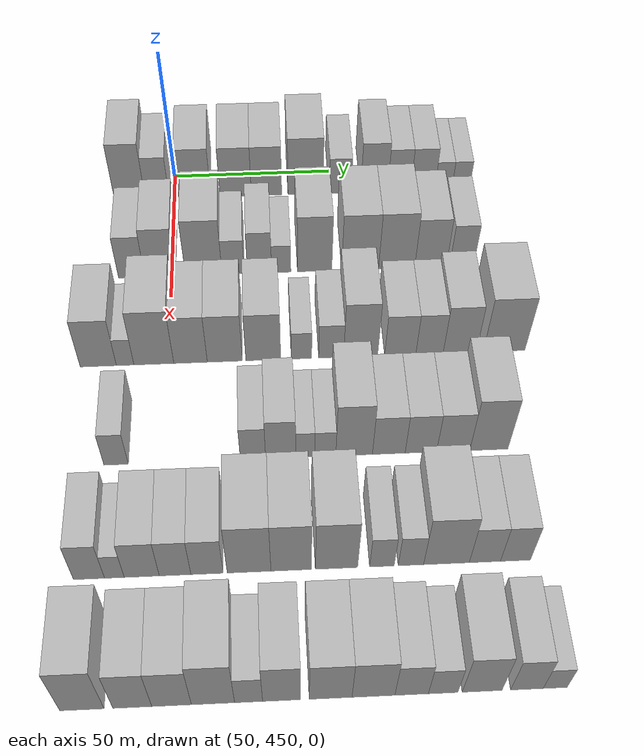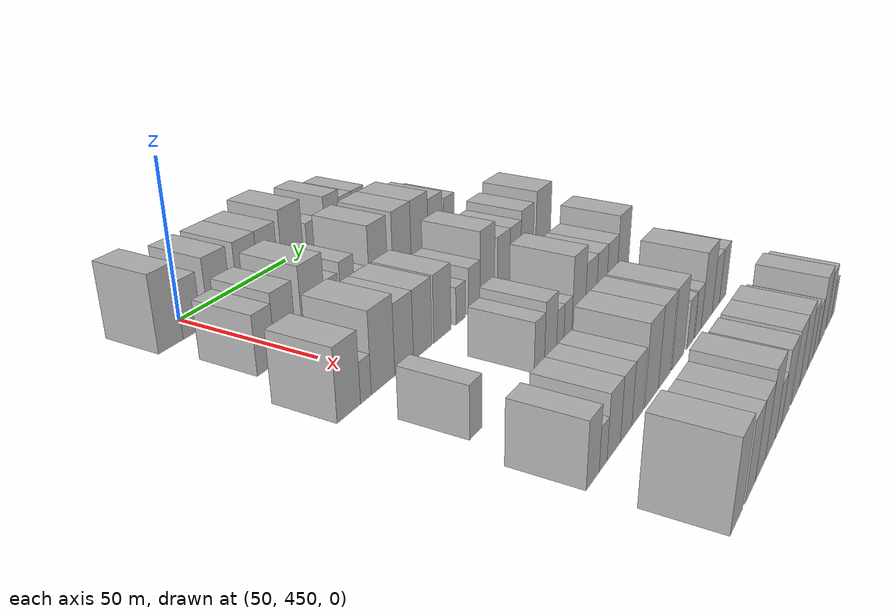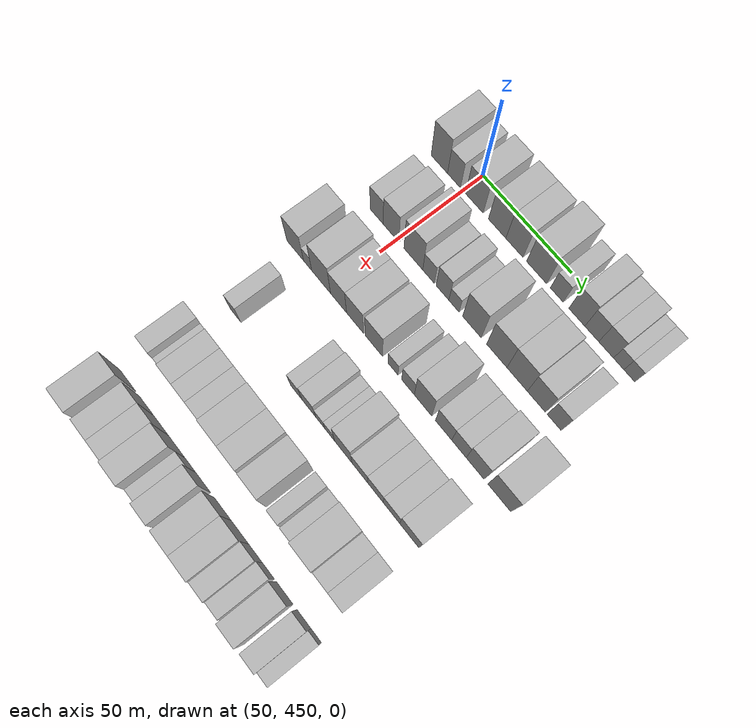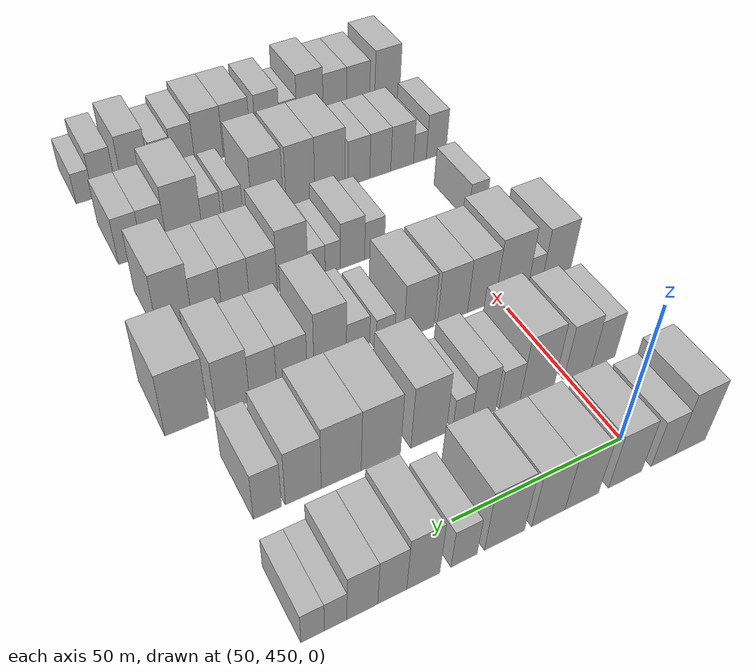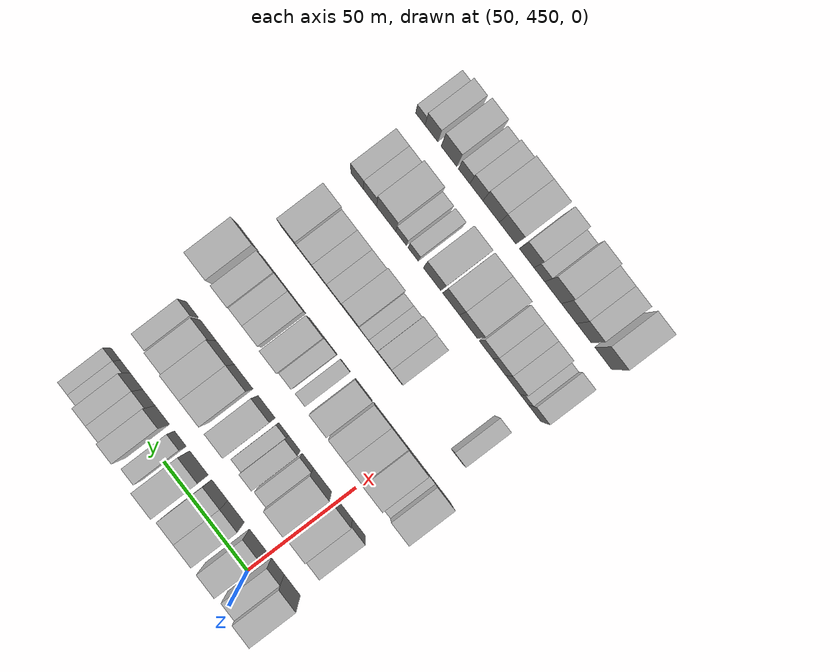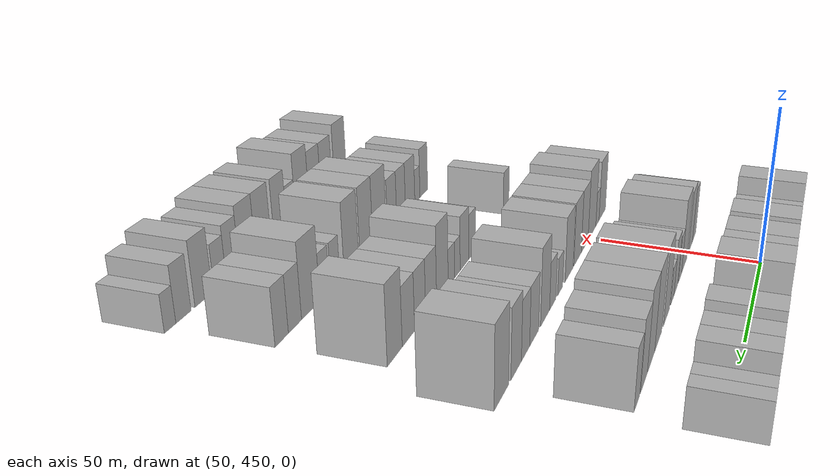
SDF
<sdf version="1.6">
 <world name="default">
  <model name="building_105">
   <static>1</static>
   <pose>50.0000 436.0087 0 0.000000 0.000000 0.000000</pose>
   <link name="link">
    <pose>0 0 12.00 0 0 0</pose>
    <collision name="collision"><geometry><box><size>20.0000 9.7291 24.0000</size></box></geometry></collision>
    <visual name="visual">
     <cast_shadows>0</cast_shadows>
     <geometry><box><size>20.0000 9.7291 24.0000</size></box></geometry>
     <material>
      <script>
       <uri>model://HANNAS_wall/materials/scripts</uri>
       <uri>model://HANNAS_wall/materials/textures</uri>
       <name>vrc/HANNAS_wall</name>
      </script>
     </material>
    </visual>
   </link>
  </model>
  <model name="building_106">
   <static>1</static>
   <pose>50.0000 444.6808 0 0.000000 0.000000 0.000000</pose>
   <link name="link">
    <pose>0 0 9.00 0 0 0</pose>
    <collision name="collision"><geometry><box><size>20.0000 7.6152 18.0000</size></box></geometry></collision>
    <visual name="visual">
     <cast_shadows>0</cast_shadows>
     <geometry><box><size>20.0000 7.6152 18.0000</size></box></geometry>
     <material>
      <script>
       <uri>model://HANNAS_wall/materials/scripts</uri>
       <uri>model://HANNAS_wall/materials/textures</uri>
       <name>vrc/HANNAS_wall</name>
      </script>
     </material>
    </visual>
   </link>
  </model>
  <model name="building_107">
   <static>1</static>
   <pose>50.0000 456.5857 0 0.000000 0.000000 0.000000</pose>
   <link name="link">
    <pose>0 0 10.50 0 0 0</pose>
    <collision name="collision"><geometry><box><size>20.0000 10.1945 21.0000</size></box></geometry></collision>
    <visual name="visual">
     <cast_shadows>0</cast_shadows>
     <geometry><box><size>20.0000 10.1945 21.0000</size></box></geometry>
     <material>
      <script>
       <uri>model://HANNAS_wall/materials/scripts</uri>
       <uri>model://HANNAS_wall/materials/textures</uri>
       <name>vrc/HANNAS_wall</name>
      </script>
     </material>
    </visual>
   </link>
  </model>
  <model name="building_108">
   <static>1</static>
   <pose>50.0000 469.6621 0 0.000000 0.000000 0.000000</pose>
   <link name="link">
    <pose>0 0 10.50 0 0 0</pose>
    <collision name="collision"><geometry><box><size>20.0000 9.9584 21.0000</size></box></geometry></collision>
    <visual name="visual">
     <cast_shadows>0</cast_shadows>
     <geometry><box><size>20.0000 9.9584 21.0000</size></box></geometry>
     <material>
      <script>
       <uri>model://HANNAS_wall/materials/scripts</uri>
       <uri>model://HANNAS_wall/materials/textures</uri>
       <name>vrc/HANNAS_wall</name>
      </script>
     </material>
    </visual>
   </link>
  </model>
  <model name="building_109">
   <static>1</static>
   <pose>50.0000 479.4709 0 0.000000 0.000000 0.000000</pose>
   <link name="link">
    <pose>0 0 10.50 0 0 0</pose>
    <collision name="collision"><geometry><box><size>20.0000 9.6592 21.0000</size></box></geometry></collision>
    <visual name="visual">
     <cast_shadows>0</cast_shadows>
     <geometry><box><size>20.0000 9.6592 21.0000</size></box></geometry>
     <material>
      <script>
       <uri>model://HANNAS_wall/materials/scripts</uri>
       <uri>model://HANNAS_wall/materials/textures</uri>
       <name>vrc/HANNAS_wall</name>
      </script>
     </material>
    </visual>
   </link>
  </model>
  <model name="building_110">
   <static>1</static>
   <pose>50.0000 491.8920 0 0.000000 0.000000 0.000000</pose>
   <link name="link">
    <pose>0 0 12.00 0 0 0</pose>
    <collision name="collision"><geometry><box><size>20.0000 11.1830 24.0000</size></box></geometry></collision>
    <visual name="visual">
     <cast_shadows>0</cast_shadows>
     <geometry><box><size>20.0000 11.1830 24.0000</size></box></geometry>
     <material>
      <script>
       <uri>model://HANNAS_wall/materials/scripts</uri>
       <uri>model://HANNAS_wall/materials/textures</uri>
       <name>vrc/HANNAS_wall</name>
      </script>
     </material>
    </visual>
   </link>
  </model>
  <model name="building_111">
   <static>1</static>
   <pose>50.0000 503.0159 0 0.000000 0.000000 0.000000</pose>
   <link name="link">
    <pose>0 0 7.50 0 0 0</pose>
    <collision name="collision"><geometry><box><size>20.0000 7.0646 15.0000</size></box></geometry></collision>
    <visual name="visual">
     <cast_shadows>0</cast_shadows>
     <geometry><box><size>20.0000 7.0646 15.0000</size></box></geometry>
     <material>
      <script>
       <uri>model://HANNAS_wall/materials/scripts</uri>
       <uri>model://HANNAS_wall/materials/textures</uri>
       <name>vrc/HANNAS_wall</name>
      </script>
     </material>
    </visual>
   </link>
  </model>
  <model name="building_112">
   <static>1</static>
   <pose>50.0000 513.8716 0 0.000000 0.000000 0.000000</pose>
   <link name="link">
    <pose>0 0 10.50 0 0 0</pose>
    <collision name="collision"><geometry><box><size>20.0000 8.6467 21.0000</size></box></geometry></collision>
    <visual name="visual">
     <cast_shadows>0</cast_shadows>
     <geometry><box><size>20.0000 8.6467 21.0000</size></box></geometry>
     <material>
      <script>
       <uri>model://HANNAS_wall/materials/scripts</uri>
       <uri>model://HANNAS_wall/materials/textures</uri>
       <name>vrc/HANNAS_wall</name>
      </script>
     </material>
    </visual>
   </link>
  </model>
  <model name="building_113">
   <static>1</static>
   <pose>50.0000 521.8988 0 0.000000 0.000000 0.000000</pose>
   <link name="link">
    <pose>0 0 9.00 0 0 0</pose>
    <collision name="collision"><geometry><box><size>20.0000 7.4078 18.0000</size></box></geometry></collision>
    <visual name="visual">
     <cast_shadows>0</cast_shadows>
     <geometry><box><size>20.0000 7.4078 18.0000</size></box></geometry>
     <material>
      <script>
       <uri>model://HANNAS_wall/materials/scripts</uri>
       <uri>model://HANNAS_wall/materials/textures</uri>
       <name>vrc/HANNAS_wall</name>
      </script>
     </material>
    </visual>
   </link>
  </model>
  <model name="building_114">
   <static>1</static>
   <pose>50.0000 529.4783 0 0.000000 0.000000 0.000000</pose>
   <link name="link">
    <pose>0 0 9.00 0 0 0</pose>
    <collision name="collision"><geometry><box><size>20.0000 7.7511 18.0000</size></box></geometry></collision>
    <visual name="visual">
     <cast_shadows>0</cast_shadows>
     <geometry><box><size>20.0000 7.7511 18.0000</size></box></geometry>
     <material>
      <script>
       <uri>model://HANNAS_wall/materials/scripts</uri>
       <uri>model://HANNAS_wall/materials/textures</uri>
       <name>vrc/HANNAS_wall</name>
      </script>
     </material>
    </visual>
   </link>
  </model>
  <model name="building_115">
   <static>1</static>
   <pose>50.0000 536.1049 0 0.000000 0.000000 0.000000</pose>
   <link name="link">
    <pose>0 0 6.00 0 0 0</pose>
    <collision name="collision"><geometry><box><size>20.0000 5.5022 12.0000</size></box></geometry></collision>
    <visual name="visual">
     <cast_shadows>0</cast_shadows>
     <geometry><box><size>20.0000 5.5022 12.0000</size></box></geometry>
     <material>
      <script>
       <uri>model://HANNAS_wall/materials/scripts</uri>
       <uri>model://HANNAS_wall/materials/textures</uri>
       <name>vrc/HANNAS_wall</name>
      </script>
     </material>
    </visual>
   </link>
  </model>
  <model name="building_116">
   <static>1</static>
   <pose>50.0000 541.6937 0 0.000000 0.000000 0.000000</pose>
   <link name="link">
    <pose>0 0 6.00 0 0 0</pose>
    <collision name="collision"><geometry><box><size>20.0000 5.6753 12.0000</size></box></geometry></collision>
    <visual name="visual">
     <cast_shadows>0</cast_shadows>
     <geometry><box><size>20.0000 5.6753 12.0000</size></box></geometry>
     <material>
      <script>
       <uri>model://HANNAS_wall/materials/scripts</uri>
       <uri>model://HANNAS_wall/materials/textures</uri>
       <name>vrc/HANNAS_wall</name>
      </script>
     </material>
    </visual>
   </link>
  </model>
  <model name="building_226">
   <static>1</static>
   <pose>82.0000 438.0944 0 0.000000 0.000000 0.000000</pose>
   <link name="link">
    <pose>0 0 9.00 0 0 0</pose>
    <collision name="collision"><geometry><box><size>20.0000 7.8311 18.0000</size></box></geometry></collision>
    <visual name="visual">
     <cast_shadows>0</cast_shadows>
     <geometry><box><size>20.0000 7.8311 18.0000</size></box></geometry>
     <material>
      <script>
       <uri>model://HANNAS_wall/materials/scripts</uri>
       <uri>model://HANNAS_wall/materials/textures</uri>
       <name>vrc/HANNAS_wall</name>
      </script>
     </material>
    </visual>
   </link>
  </model>
  <model name="building_227">
   <static>1</static>
   <pose>82.0000 446.6319 0 0.000000 0.000000 0.000000</pose>
   <link name="link">
    <pose>0 0 10.50 0 0 0</pose>
    <collision name="collision"><geometry><box><size>20.0000 9.2438 21.0000</size></box></geometry></collision>
    <visual name="visual">
     <cast_shadows>0</cast_shadows>
     <geometry><box><size>20.0000 9.2438 21.0000</size></box></geometry>
     <material>
      <script>
       <uri>model://HANNAS_wall/materials/scripts</uri>
       <uri>model://HANNAS_wall/materials/textures</uri>
       <name>vrc/HANNAS_wall</name>
      </script>
     </material>
    </visual>
   </link>
  </model>
  <model name="building_228">
   <static>1</static>
   <pose>82.0000 459.7396 0 0.000000 0.000000 0.000000</pose>
   <link name="link">
    <pose>0 0 12.00 0 0 0</pose>
    <collision name="collision"><geometry><box><size>20.0000 10.9716 24.0000</size></box></geometry></collision>
    <visual name="visual">
     <cast_shadows>0</cast_shadows>
     <geometry><box><size>20.0000 10.9716 24.0000</size></box></geometry>
     <material>
      <script>
       <uri>model://HANNAS_wall/materials/scripts</uri>
       <uri>model://HANNAS_wall/materials/textures</uri>
       <name>vrc/HANNAS_wall</name>
      </script>
     </material>
    </visual>
   </link>
  </model>
  <model name="building_229">
   <static>1</static>
   <pose>82.0000 468.5667 0 0.000000 0.000000 0.000000</pose>
   <link name="link">
    <pose>0 0 7.50 0 0 0</pose>
    <collision name="collision"><geometry><box><size>20.0000 6.6825 15.0000</size></box></geometry></collision>
    <visual name="visual">
     <cast_shadows>0</cast_shadows>
     <geometry><box><size>20.0000 6.6825 15.0000</size></box></geometry>
     <material>
      <script>
       <uri>model://HANNAS_wall/materials/scripts</uri>
       <uri>model://HANNAS_wall/materials/textures</uri>
       <name>vrc/HANNAS_wall</name>
      </script>
     </material>
    </visual>
   </link>
  </model>
  <model name="building_230">
   <static>1</static>
   <pose>82.0000 476.5369 0 0.000000 0.000000 0.000000</pose>
   <link name="link">
    <pose>0 0 9.00 0 0 0</pose>
    <collision name="collision"><geometry><box><size>20.0000 7.2579 18.0000</size></box></geometry></collision>
    <visual name="visual">
     <cast_shadows>0</cast_shadows>
     <geometry><box><size>20.0000 7.2579 18.0000</size></box></geometry>
     <material>
      <script>
       <uri>model://HANNAS_wall/materials/scripts</uri>
       <uri>model://HANNAS_wall/materials/textures</uri>
       <name>vrc/HANNAS_wall</name>
      </script>
     </material>
    </visual>
   </link>
  </model>
  <model name="building_231">
   <static>1</static>
   <pose>82.0000 483.0616 0 0.000000 0.000000 0.000000</pose>
   <link name="link">
    <pose>0 0 6.00 0 0 0</pose>
    <collision name="collision"><geometry><box><size>20.0000 5.7916 12.0000</size></box></geometry></collision>
    <visual name="visual">
     <cast_shadows>0</cast_shadows>
     <geometry><box><size>20.0000 5.7916 12.0000</size></box></geometry>
     <material>
      <script>
       <uri>model://HANNAS_wall/materials/scripts</uri>
       <uri>model://HANNAS_wall/materials/textures</uri>
       <name>vrc/HANNAS_wall</name>
      </script>
     </material>
    </visual>
   </link>
  </model>
  <model name="building_232">
   <static>1</static>
   <pose>82.0000 493.1412 0 0.000000 0.000000 0.000000</pose>
   <link name="link">
    <pose>0 0 12.00 0 0 0</pose>
    <collision name="collision"><geometry><box><size>20.0000 10.3676 24.0000</size></box></geometry></collision>
    <visual name="visual">
     <cast_shadows>0</cast_shadows>
     <geometry><box><size>20.0000 10.3676 24.0000</size></box></geometry>
     <material>
      <script>
       <uri>model://HANNAS_wall/materials/scripts</uri>
       <uri>model://HANNAS_wall/materials/textures</uri>
       <name>vrc/HANNAS_wall</name>
      </script>
     </material>
    </visual>
   </link>
  </model>
  <model name="building_233">
   <static>1</static>
   <pose>82.0000 506.9032 0 0.000000 0.000000 0.000000</pose>
   <link name="link">
    <pose>0 0 12.00 0 0 0</pose>
    <collision name="collision"><geometry><box><size>20.0000 11.1565 24.0000</size></box></geometry></collision>
    <visual name="visual">
     <cast_shadows>0</cast_shadows>
     <geometry><box><size>20.0000 11.1565 24.0000</size></box></geometry>
     <material>
      <script>
       <uri>model://HANNAS_wall/materials/scripts</uri>
       <uri>model://HANNAS_wall/materials/textures</uri>
       <name>vrc/HANNAS_wall</name>
      </script>
     </material>
    </visual>
   </link>
  </model>
  <model name="building_234">
   <static>1</static>
   <pose>82.0000 517.9600 0 0.000000 0.000000 0.000000</pose>
   <link name="link">
    <pose>0 0 12.00 0 0 0</pose>
    <collision name="collision"><geometry><box><size>20.0000 10.9570 24.0000</size></box></geometry></collision>
    <visual name="visual">
     <cast_shadows>0</cast_shadows>
     <geometry><box><size>20.0000 10.9570 24.0000</size></box></geometry>
     <material>
      <script>
       <uri>model://HANNAS_wall/materials/scripts</uri>
       <uri>model://HANNAS_wall/materials/textures</uri>
       <name>vrc/HANNAS_wall</name>
      </script>
     </material>
    </visual>
   </link>
  </model>
  <model name="building_235">
   <static>1</static>
   <pose>82.0000 528.2477 0 0.000000 0.000000 0.000000</pose>
   <link name="link">
    <pose>0 0 10.50 0 0 0</pose>
    <collision name="collision"><geometry><box><size>20.0000 9.6184 21.0000</size></box></geometry></collision>
    <visual name="visual">
     <cast_shadows>0</cast_shadows>
     <geometry><box><size>20.0000 9.6184 21.0000</size></box></geometry>
     <material>
      <script>
       <uri>model://HANNAS_wall/materials/scripts</uri>
       <uri>model://HANNAS_wall/materials/textures</uri>
       <name>vrc/HANNAS_wall</name>
      </script>
     </material>
    </visual>
   </link>
  </model>
  <model name="building_236">
   <static>1</static>
   <pose>82.0000 537.7304 0 0.000000 0.000000 0.000000</pose>
   <link name="link">
    <pose>0 0 9.00 0 0 0</pose>
    <collision name="collision"><geometry><box><size>20.0000 7.3471 18.0000</size></box></geometry></collision>
    <visual name="visual">
     <cast_shadows>0</cast_shadows>
     <geometry><box><size>20.0000 7.3471 18.0000</size></box></geometry>
     <material>
      <script>
       <uri>model://HANNAS_wall/materials/scripts</uri>
       <uri>model://HANNAS_wall/materials/textures</uri>
       <name>vrc/HANNAS_wall</name>
      </script>
     </material>
    </visual>
   </link>
  </model>
  <model name="building_345">
   <static>1</static>
   <pose>114.0000 430.2376 0 0.000000 0.000000 0.000000</pose>
   <link name="link">
    <pose>0 0 10.50 0 0 0</pose>
    <collision name="collision"><geometry><box><size>20.0000 10.1846 21.0000</size></box></geometry></collision>
    <visual name="visual">
     <cast_shadows>0</cast_shadows>
     <geometry><box><size>20.0000 10.1846 21.0000</size></box></geometry>
     <material>
      <script>
       <uri>model://HANNAS_wall/materials/scripts</uri>
       <uri>model://HANNAS_wall/materials/textures</uri>
       <name>vrc/HANNAS_wall</name>
      </script>
     </material>
    </visual>
   </link>
  </model>
  <model name="building_346">
   <static>1</static>
   <pose>114.0000 437.7969 0 0.000000 0.000000 0.000000</pose>
   <link name="link">
    <pose>0 0 6.00 0 0 0</pose>
    <collision name="collision"><geometry><box><size>20.0000 4.9341 12.0000</size></box></geometry></collision>
    <visual name="visual">
     <cast_shadows>0</cast_shadows>
     <geometry><box><size>20.0000 4.9341 12.0000</size></box></geometry>
     <material>
      <script>
       <uri>model://HANNAS_wall/materials/scripts</uri>
       <uri>model://HANNAS_wall/materials/textures</uri>
       <name>vrc/HANNAS_wall</name>
      </script>
     </material>
    </visual>
   </link>
  </model>
  <model name="building_347">
   <static>1</static>
   <pose>114.0000 445.8922 0 0.000000 0.000000 0.000000</pose>
   <link name="link">
    <pose>0 0 12.00 0 0 0</pose>
    <collision name="collision"><geometry><box><size>20.0000 11.2565 24.0000</size></box></geometry></collision>
    <visual name="visual">
     <cast_shadows>0</cast_shadows>
     <geometry><box><size>20.0000 11.2565 24.0000</size></box></geometry>
     <material>
      <script>
       <uri>model://HANNAS_wall/materials/scripts</uri>
       <uri>model://HANNAS_wall/materials/textures</uri>
       <name>vrc/HANNAS_wall</name>
      </script>
     </material>
    </visual>
   </link>
  </model>
  <model name="building_348">
   <static>1</static>
   <pose>114.0000 456.2611 0 0.000000 0.000000 0.000000</pose>
   <link name="link">
    <pose>0 0 10.50 0 0 0</pose>
    <collision name="collision"><geometry><box><size>20.0000 9.4812 21.0000</size></box></geometry></collision>
    <visual name="visual">
     <cast_shadows>0</cast_shadows>
     <geometry><box><size>20.0000 9.4812 21.0000</size></box></geometry>
     <material>
      <script>
       <uri>model://HANNAS_wall/materials/scripts</uri>
       <uri>model://HANNAS_wall/materials/textures</uri>
       <name>vrc/HANNAS_wall</name>
      </script>
     </material>
    </visual>
   </link>
  </model>
  <model name="building_349">
   <static>1</static>
   <pose>114.0000 465.9719 0 0.000000 0.000000 0.000000</pose>
   <link name="link">
    <pose>0 0 10.50 0 0 0</pose>
    <collision name="collision"><geometry><box><size>20.0000 9.9404 21.0000</size></box></geometry></collision>
    <visual name="visual">
     <cast_shadows>0</cast_shadows>
     <geometry><box><size>20.0000 9.9404 21.0000</size></box></geometry>
     <material>
      <script>
       <uri>model://HANNAS_wall/materials/scripts</uri>
       <uri>model://HANNAS_wall/materials/textures</uri>
       <name>vrc/HANNAS_wall</name>
      </script>
     </material>
    </visual>
   </link>
  </model>
  <model name="building_350">
   <static>1</static>
   <pose>114.0000 476.8843 0 0.000000 0.000000 0.000000</pose>
   <link name="link">
    <pose>0 0 10.50 0 0 0</pose>
    <collision name="collision"><geometry><box><size>20.0000 9.8845 21.0000</size></box></geometry></collision>
    <visual name="visual">
     <cast_shadows>0</cast_shadows>
     <geometry><box><size>20.0000 9.8845 21.0000</size></box></geometry>
     <material>
      <script>
       <uri>model://HANNAS_wall/materials/scripts</uri>
       <uri>model://HANNAS_wall/materials/textures</uri>
       <name>vrc/HANNAS_wall</name>
      </script>
     </material>
    </visual>
   </link>
  </model>
  <model name="building_351">
   <static>1</static>
   <pose>114.0000 487.7170 0 0.000000 0.000000 0.000000</pose>
   <link name="link">
    <pose>0 0 6.00 0 0 0</pose>
    <collision name="collision"><geometry><box><size>20.0000 5.7809 12.0000</size></box></geometry></collision>
    <visual name="visual">
     <cast_shadows>0</cast_shadows>
     <geometry><box><size>20.0000 5.7809 12.0000</size></box></geometry>
     <material>
      <script>
       <uri>model://HANNAS_wall/materials/scripts</uri>
       <uri>model://HANNAS_wall/materials/textures</uri>
       <name>vrc/HANNAS_wall</name>
      </script>
     </material>
    </visual>
   </link>
  </model>
  <model name="building_352">
   <static>1</static>
   <pose>114.0000 496.1612 0 0.000000 0.000000 0.000000</pose>
   <link name="link">
    <pose>0 0 7.50 0 0 0</pose>
    <collision name="collision"><geometry><box><size>20.0000 7.1074 15.0000</size></box></geometry></collision>
    <visual name="visual">
     <cast_shadows>0</cast_shadows>
     <geometry><box><size>20.0000 7.1074 15.0000</size></box></geometry>
     <material>
      <script>
       <uri>model://HANNAS_wall/materials/scripts</uri>
       <uri>model://HANNAS_wall/materials/textures</uri>
       <name>vrc/HANNAS_wall</name>
      </script>
     </material>
    </visual>
   </link>
  </model>
  <model name="building_353">
   <static>1</static>
   <pose>114.0000 504.5646 0 0.000000 0.000000 0.000000</pose>
   <link name="link">
    <pose>0 0 12.00 0 0 0</pose>
    <collision name="collision"><geometry><box><size>20.0000 9.6995 24.0000</size></box></geometry></collision>
    <visual name="visual">
     <cast_shadows>0</cast_shadows>
     <geometry><box><size>20.0000 9.6995 24.0000</size></box></geometry>
     <material>
      <script>
       <uri>model://HANNAS_wall/materials/scripts</uri>
       <uri>model://HANNAS_wall/materials/textures</uri>
       <name>vrc/HANNAS_wall</name>
      </script>
     </material>
    </visual>
   </link>
  </model>
  <model name="building_354">
   <static>1</static>
   <pose>114.0000 515.8665 0 0.000000 0.000000 0.000000</pose>
   <link name="link">
    <pose>0 0 9.00 0 0 0</pose>
    <collision name="collision"><geometry><box><size>20.0000 8.9042 18.0000</size></box></geometry></collision>
    <visual name="visual">
     <cast_shadows>0</cast_shadows>
     <geometry><box><size>20.0000 8.9042 18.0000</size></box></geometry>
     <material>
      <script>
       <uri>model://HANNAS_wall/materials/scripts</uri>
       <uri>model://HANNAS_wall/materials/textures</uri>
       <name>vrc/HANNAS_wall</name>
      </script>
     </material>
    </visual>
   </link>
  </model>
  <model name="building_355">
   <static>1</static>
   <pose>114.0000 524.2230 0 0.000000 0.000000 0.000000</pose>
   <link name="link">
    <pose>0 0 9.00 0 0 0</pose>
    <collision name="collision"><geometry><box><size>20.0000 7.8090 18.0000</size></box></geometry></collision>
    <visual name="visual">
     <cast_shadows>0</cast_shadows>
     <geometry><box><size>20.0000 7.8090 18.0000</size></box></geometry>
     <material>
      <script>
       <uri>model://HANNAS_wall/materials/scripts</uri>
       <uri>model://HANNAS_wall/materials/textures</uri>
       <name>vrc/HANNAS_wall</name>
      </script>
     </material>
    </visual>
   </link>
  </model>
  <model name="building_356">
   <static>1</static>
   <pose>114.0000 532.8742 0 0.000000 0.000000 0.000000</pose>
   <link name="link">
    <pose>0 0 10.50 0 0 0</pose>
    <collision name="collision"><geometry><box><size>20.0000 9.4934 21.0000</size></box></geometry></collision>
    <visual name="visual">
     <cast_shadows>0</cast_shadows>
     <geometry><box><size>20.0000 9.4934 21.0000</size></box></geometry>
     <material>
      <script>
       <uri>model://HANNAS_wall/materials/scripts</uri>
       <uri>model://HANNAS_wall/materials/textures</uri>
       <name>vrc/HANNAS_wall</name>
      </script>
     </material>
    </visual>
   </link>
  </model>
  <model name="building_357">
   <static>1</static>
   <pose>114.0000 545.6073 0 0.000000 0.000000 0.000000</pose>
   <link name="link">
    <pose>0 0 12.00 0 0 0</pose>
    <collision name="collision"><geometry><box><size>20.0000 11.9728 24.0000</size></box></geometry></collision>
    <visual name="visual">
     <cast_shadows>0</cast_shadows>
     <geometry><box><size>20.0000 11.9728 24.0000</size></box></geometry>
     <material>
      <script>
       <uri>model://HANNAS_wall/materials/scripts</uri>
       <uri>model://HANNAS_wall/materials/textures</uri>
       <name>vrc/HANNAS_wall</name>
      </script>
     </material>
    </visual>
   </link>
  </model>
  <model name="building_465">
   <static>1</static>
   <pose>146.0000 437.0614 0 0.000000 0.000000 0.000000</pose>
   <link name="link">
    <pose>0 0 7.50 0 0 0</pose>
    <collision name="collision"><geometry><box><size>20.0000 6.4445 15.0000</size></box></geometry></collision>
    <visual name="visual">
     <cast_shadows>0</cast_shadows>
     <geometry><box><size>20.0000 6.4445 15.0000</size></box></geometry>
     <material>
      <script>
       <uri>model://HANNAS_wall/materials/scripts</uri>
       <uri>model://HANNAS_wall/materials/textures</uri>
       <name>vrc/HANNAS_wall</name>
      </script>
     </material>
    </visual>
   </link>
  </model>
  <model name="building_466">
   <static>1</static>
   <pose>146.0000 473.3541 0 0.000000 0.000000 0.000000</pose>
   <link name="link">
    <pose>0 0 7.50 0 0 0</pose>
    <collision name="collision"><geometry><box><size>20.0000 6.7136 15.0000</size></box></geometry></collision>
    <visual name="visual">
     <cast_shadows>0</cast_shadows>
     <geometry><box><size>20.0000 6.7136 15.0000</size></box></geometry>
     <material>
      <script>
       <uri>model://HANNAS_wall/materials/scripts</uri>
       <uri>model://HANNAS_wall/materials/textures</uri>
       <name>vrc/HANNAS_wall</name>
      </script>
     </material>
    </visual>
   </link>
  </model>
  <model name="building_467">
   <static>1</static>
   <pose>146.0000 480.7275 0 0.000000 0.000000 0.000000</pose>
   <link name="link">
    <pose>0 0 9.00 0 0 0</pose>
    <collision name="collision"><geometry><box><size>20.0000 8.0332 18.0000</size></box></geometry></collision>
    <visual name="visual">
     <cast_shadows>0</cast_shadows>
     <geometry><box><size>20.0000 8.0332 18.0000</size></box></geometry>
     <material>
      <script>
       <uri>model://HANNAS_wall/materials/scripts</uri>
       <uri>model://HANNAS_wall/materials/textures</uri>
       <name>vrc/HANNAS_wall</name>
      </script>
     </material>
    </visual>
   </link>
  </model>
  <model name="building_468">
   <static>1</static>
   <pose>146.0000 487.2631 0 0.000000 0.000000 0.000000</pose>
   <link name="link">
    <pose>0 0 6.00 0 0 0</pose>
    <collision name="collision"><geometry><box><size>20.0000 5.0380 12.0000</size></box></geometry></collision>
    <visual name="visual">
     <cast_shadows>0</cast_shadows>
     <geometry><box><size>20.0000 5.0380 12.0000</size></box></geometry>
     <material>
      <script>
       <uri>model://HANNAS_wall/materials/scripts</uri>
       <uri>model://HANNAS_wall/materials/textures</uri>
       <name>vrc/HANNAS_wall</name>
      </script>
     </material>
    </visual>
   </link>
  </model>
  <model name="building_469">
   <static>1</static>
   <pose>146.0000 492.5959 0 0.000000 0.000000 0.000000</pose>
   <link name="link">
    <pose>0 0 6.00 0 0 0</pose>
    <collision name="collision"><geometry><box><size>20.0000 5.6276 12.0000</size></box></geometry></collision>
    <visual name="visual">
     <cast_shadows>0</cast_shadows>
     <geometry><box><size>20.0000 5.6276 12.0000</size></box></geometry>
     <material>
      <script>
       <uri>model://HANNAS_wall/materials/scripts</uri>
       <uri>model://HANNAS_wall/materials/textures</uri>
       <name>vrc/HANNAS_wall</name>
      </script>
     </material>
    </visual>
   </link>
  </model>
  <model name="building_470">
   <static>1</static>
   <pose>146.0000 500.3106 0 0.000000 0.000000 0.000000</pose>
   <link name="link">
    <pose>0 0 12.00 0 0 0</pose>
    <collision name="collision"><geometry><box><size>20.0000 9.8017 24.0000</size></box></geometry></collision>
    <visual name="visual">
     <cast_shadows>0</cast_shadows>
     <geometry><box><size>20.0000 9.8017 24.0000</size></box></geometry>
     <material>
      <script>
       <uri>model://HANNAS_wall/materials/scripts</uri>
       <uri>model://HANNAS_wall/materials/textures</uri>
       <name>vrc/HANNAS_wall</name>
      </script>
     </material>
    </visual>
   </link>
  </model>
  <model name="building_471">
   <static>1</static>
   <pose>146.0000 509.5921 0 0.000000 0.000000 0.000000</pose>
   <link name="link">
    <pose>0 0 9.00 0 0 0</pose>
    <collision name="collision"><geometry><box><size>20.0000 8.7613 18.0000</size></box></geometry></collision>
    <visual name="visual">
     <cast_shadows>0</cast_shadows>
     <geometry><box><size>20.0000 8.7613 18.0000</size></box></geometry>
     <material>
      <script>
       <uri>model://HANNAS_wall/materials/scripts</uri>
       <uri>model://HANNAS_wall/materials/textures</uri>
       <name>vrc/HANNAS_wall</name>
      </script>
     </material>
    </visual>
   </link>
  </model>
  <model name="building_472">
   <static>1</static>
   <pose>146.0000 518.1861 0 0.000000 0.000000 0.000000</pose>
   <link name="link">
    <pose>0 0 9.00 0 0 0</pose>
    <collision name="collision"><geometry><box><size>20.0000 8.4266 18.0000</size></box></geometry></collision>
    <visual name="visual">
     <cast_shadows>0</cast_shadows>
     <geometry><box><size>20.0000 8.4266 18.0000</size></box></geometry>
     <material>
      <script>
       <uri>model://HANNAS_wall/materials/scripts</uri>
       <uri>model://HANNAS_wall/materials/textures</uri>
       <name>vrc/HANNAS_wall</name>
      </script>
     </material>
    </visual>
   </link>
  </model>
  <model name="building_473">
   <static>1</static>
   <pose>146.0000 526.8687 0 0.000000 0.000000 0.000000</pose>
   <link name="link">
    <pose>0 0 9.00 0 0 0</pose>
    <collision name="collision"><geometry><box><size>20.0000 8.9387 18.0000</size></box></geometry></collision>
    <visual name="visual">
     <cast_shadows>0</cast_shadows>
     <geometry><box><size>20.0000 8.9387 18.0000</size></box></geometry>
     <material>
      <script>
       <uri>model://HANNAS_wall/materials/scripts</uri>
       <uri>model://HANNAS_wall/materials/textures</uri>
       <name>vrc/HANNAS_wall</name>
      </script>
     </material>
    </visual>
   </link>
  </model>
  <model name="building_474">
   <static>1</static>
   <pose>146.0000 536.4719 0 0.000000 0.000000 0.000000</pose>
   <link name="link">
    <pose>0 0 12.00 0 0 0</pose>
    <collision name="collision"><geometry><box><size>20.0000 10.2676 24.0000</size></box></geometry></collision>
    <visual name="visual">
     <cast_shadows>0</cast_shadows>
     <geometry><box><size>20.0000 10.2676 24.0000</size></box></geometry>
     <material>
      <script>
       <uri>model://HANNAS_wall/materials/scripts</uri>
       <uri>model://HANNAS_wall/materials/textures</uri>
       <name>vrc/HANNAS_wall</name>
      </script>
     </material>
    </visual>
   </link>
  </model>
  <model name="building_587">
   <static>1</static>
   <pose>178.0000 432.1834 0 0.000000 0.000000 0.000000</pose>
   <link name="link">
    <pose>0 0 9.00 0 0 0</pose>
    <collision name="collision"><geometry><box><size>20.0000 7.6796 18.0000</size></box></geometry></collision>
    <visual name="visual">
     <cast_shadows>0</cast_shadows>
     <geometry><box><size>20.0000 7.6796 18.0000</size></box></geometry>
     <material>
      <script>
       <uri>model://HANNAS_wall/materials/scripts</uri>
       <uri>model://HANNAS_wall/materials/textures</uri>
       <name>vrc/HANNAS_wall</name>
      </script>
     </material>
    </visual>
   </link>
  </model>
  <model name="building_588">
   <static>1</static>
   <pose>178.0000 438.4480 0 0.000000 0.000000 0.000000</pose>
   <link name="link">
    <pose>0 0 6.00 0 0 0</pose>
    <collision name="collision"><geometry><box><size>20.0000 4.8495 12.0000</size></box></geometry></collision>
    <visual name="visual">
     <cast_shadows>0</cast_shadows>
     <geometry><box><size>20.0000 4.8495 12.0000</size></box></geometry>
     <material>
      <script>
       <uri>model://HANNAS_wall/materials/scripts</uri>
       <uri>model://HANNAS_wall/materials/textures</uri>
       <name>vrc/HANNAS_wall</name>
      </script>
     </material>
    </visual>
   </link>
  </model>
  <model name="building_589">
   <static>1</static>
   <pose>178.0000 445.2001 0 0.000000 0.000000 0.000000</pose>
   <link name="link">
    <pose>0 0 9.00 0 0 0</pose>
    <collision name="collision"><geometry><box><size>20.0000 8.6548 18.0000</size></box></geometry></collision>
    <visual name="visual">
     <cast_shadows>0</cast_shadows>
     <geometry><box><size>20.0000 8.6548 18.0000</size></box></geometry>
     <material>
      <script>
       <uri>model://HANNAS_wall/materials/scripts</uri>
       <uri>model://HANNAS_wall/materials/textures</uri>
       <name>vrc/HANNAS_wall</name>
      </script>
     </material>
    </visual>
   </link>
  </model>
  <model name="building_590">
   <static>1</static>
   <pose>178.0000 453.4441 0 0.000000 0.000000 0.000000</pose>
   <link name="link">
    <pose>0 0 9.00 0 0 0</pose>
    <collision name="collision"><geometry><box><size>20.0000 7.8331 18.0000</size></box></geometry></collision>
    <visual name="visual">
     <cast_shadows>0</cast_shadows>
     <geometry><box><size>20.0000 7.8331 18.0000</size></box></geometry>
     <material>
      <script>
       <uri>model://HANNAS_wall/materials/scripts</uri>
       <uri>model://HANNAS_wall/materials/textures</uri>
       <name>vrc/HANNAS_wall</name>
      </script>
     </material>
    </visual>
   </link>
  </model>
  <model name="building_591">
   <static>1</static>
   <pose>178.0000 461.3627 0 0.000000 0.000000 0.000000</pose>
   <link name="link">
    <pose>0 0 9.00 0 0 0</pose>
    <collision name="collision"><geometry><box><size>20.0000 8.0041 18.0000</size></box></geometry></collision>
    <visual name="visual">
     <cast_shadows>0</cast_shadows>
     <geometry><box><size>20.0000 8.0041 18.0000</size></box></geometry>
     <material>
      <script>
       <uri>model://HANNAS_wall/materials/scripts</uri>
       <uri>model://HANNAS_wall/materials/textures</uri>
       <name>vrc/HANNAS_wall</name>
      </script>
     </material>
    </visual>
   </link>
  </model>
  <model name="building_592">
   <static>1</static>
   <pose>178.0000 471.7921 0 0.000000 0.000000 0.000000</pose>
   <link name="link">
    <pose>0 0 12.00 0 0 0</pose>
    <collision name="collision"><geometry><box><size>20.0000 10.8547 24.0000</size></box></geometry></collision>
    <visual name="visual">
     <cast_shadows>0</cast_shadows>
     <geometry><box><size>20.0000 10.8547 24.0000</size></box></geometry>
     <material>
      <script>
       <uri>model://HANNAS_wall/materials/scripts</uri>
       <uri>model://HANNAS_wall/materials/textures</uri>
       <name>vrc/HANNAS_wall</name>
      </script>
     </material>
    </visual>
   </link>
  </model>
  <model name="building_593">
   <static>1</static>
   <pose>178.0000 482.2448 0 0.000000 0.000000 0.000000</pose>
   <link name="link">
    <pose>0 0 12.00 0 0 0</pose>
    <collision name="collision"><geometry><box><size>20.0000 10.0507 24.0000</size></box></geometry></collision>
    <visual name="visual">
     <cast_shadows>0</cast_shadows>
     <geometry><box><size>20.0000 10.0507 24.0000</size></box></geometry>
     <material>
      <script>
       <uri>model://HANNAS_wall/materials/scripts</uri>
       <uri>model://HANNAS_wall/materials/textures</uri>
       <name>vrc/HANNAS_wall</name>
      </script>
     </material>
    </visual>
   </link>
  </model>
  <model name="building_594">
   <static>1</static>
   <pose>178.0000 493.5419 0 0.000000 0.000000 0.000000</pose>
   <link name="link">
    <pose>0 0 12.00 0 0 0</pose>
    <collision name="collision"><geometry><box><size>20.0000 10.5436 24.0000</size></box></geometry></collision>
    <visual name="visual">
     <cast_shadows>0</cast_shadows>
     <geometry><box><size>20.0000 10.5436 24.0000</size></box></geometry>
     <material>
      <script>
       <uri>model://HANNAS_wall/materials/scripts</uri>
       <uri>model://HANNAS_wall/materials/textures</uri>
       <name>vrc/HANNAS_wall</name>
      </script>
     </material>
    </visual>
   </link>
  </model>
  <model name="building_595">
   <static>1</static>
   <pose>178.0000 504.8810 0 0.000000 0.000000 0.000000</pose>
   <link name="link">
    <pose>0 0 7.50 0 0 0</pose>
    <collision name="collision"><geometry><box><size>20.0000 6.1345 15.0000</size></box></geometry></collision>
    <visual name="visual">
     <cast_shadows>0</cast_shadows>
     <geometry><box><size>20.0000 6.1345 15.0000</size></box></geometry>
     <material>
      <script>
       <uri>model://HANNAS_wall/materials/scripts</uri>
       <uri>model://HANNAS_wall/materials/textures</uri>
       <name>vrc/HANNAS_wall</name>
      </script>
     </material>
    </visual>
   </link>
  </model>
  <model name="building_596">
   <static>1</static>
   <pose>178.0000 512.1306 0 0.000000 0.000000 0.000000</pose>
   <link name="link">
    <pose>0 0 7.50 0 0 0</pose>
    <collision name="collision"><geometry><box><size>20.0000 6.3647 15.0000</size></box></geometry></collision>
    <visual name="visual">
     <cast_shadows>0</cast_shadows>
     <geometry><box><size>20.0000 6.3647 15.0000</size></box></geometry>
     <material>
      <script>
       <uri>model://HANNAS_wall/materials/scripts</uri>
       <uri>model://HANNAS_wall/materials/textures</uri>
       <name>vrc/HANNAS_wall</name>
      </script>
     </material>
    </visual>
   </link>
  </model>
  <model name="building_597">
   <static>1</static>
   <pose>178.0000 521.0428 0 0.000000 0.000000 0.000000</pose>
   <link name="link">
    <pose>0 0 12.00 0 0 0</pose>
    <collision name="collision"><geometry><box><size>20.0000 11.4597 24.0000</size></box></geometry></collision>
    <visual name="visual">
     <cast_shadows>0</cast_shadows>
     <geometry><box><size>20.0000 11.4597 24.0000</size></box></geometry>
     <material>
      <script>
       <uri>model://HANNAS_wall/materials/scripts</uri>
       <uri>model://HANNAS_wall/materials/textures</uri>
       <name>vrc/HANNAS_wall</name>
      </script>
     </material>
    </visual>
   </link>
  </model>
  <model name="building_598">
   <static>1</static>
   <pose>178.0000 530.6876 0 0.000000 0.000000 0.000000</pose>
   <link name="link">
    <pose>0 0 9.00 0 0 0</pose>
    <collision name="collision"><geometry><box><size>20.0000 7.8300 18.0000</size></box></geometry></collision>
    <visual name="visual">
     <cast_shadows>0</cast_shadows>
     <geometry><box><size>20.0000 7.8300 18.0000</size></box></geometry>
     <material>
      <script>
       <uri>model://HANNAS_wall/materials/scripts</uri>
       <uri>model://HANNAS_wall/materials/textures</uri>
       <name>vrc/HANNAS_wall</name>
      </script>
     </material>
    </visual>
   </link>
  </model>
  <model name="building_599">
   <static>1</static>
   <pose>178.0000 538.3835 0 0.000000 0.000000 0.000000</pose>
   <link name="link">
    <pose>0 0 9.00 0 0 0</pose>
    <collision name="collision"><geometry><box><size>20.0000 7.5617 18.0000</size></box></geometry></collision>
    <visual name="visual">
     <cast_shadows>0</cast_shadows>
     <geometry><box><size>20.0000 7.5617 18.0000</size></box></geometry>
     <material>
      <script>
       <uri>model://HANNAS_wall/materials/scripts</uri>
       <uri>model://HANNAS_wall/materials/textures</uri>
       <name>vrc/HANNAS_wall</name>
      </script>
     </material>
    </visual>
   </link>
  </model>
  <model name="building_711">
   <static>1</static>
   <pose>210.0000 432.8623 0 0.000000 0.000000 0.000000</pose>
   <link name="link">
    <pose>0 0 12.00 0 0 0</pose>
    <collision name="collision"><geometry><box><size>20.0000 10.1376 24.0000</size></box></geometry></collision>
    <visual name="visual">
     <cast_shadows>0</cast_shadows>
     <geometry><box><size>20.0000 10.1376 24.0000</size></box></geometry>
     <material>
      <script>
       <uri>model://HANNAS_wall/materials/scripts</uri>
       <uri>model://HANNAS_wall/materials/textures</uri>
       <name>vrc/HANNAS_wall</name>
      </script>
     </material>
    </visual>
   </link>
  </model>
  <model name="building_712">
   <static>1</static>
   <pose>210.0000 444.3971 0 0.000000 0.000000 0.000000</pose>
   <link name="link">
    <pose>0 0 10.50 0 0 0</pose>
    <collision name="collision"><geometry><box><size>20.0000 8.9319 21.0000</size></box></geometry></collision>
    <visual name="visual">
     <cast_shadows>0</cast_shadows>
     <geometry><box><size>20.0000 8.9319 21.0000</size></box></geometry>
     <material>
      <script>
       <uri>model://HANNAS_wall/materials/scripts</uri>
       <uri>model://HANNAS_wall/materials/textures</uri>
       <name>vrc/HANNAS_wall</name>
      </script>
     </material>
    </visual>
   </link>
  </model>
  <model name="building_713">
   <static>1</static>
   <pose>210.0000 453.4184 0 0.000000 0.000000 0.000000</pose>
   <link name="link">
    <pose>0 0 10.50 0 0 0</pose>
    <collision name="collision"><geometry><box><size>20.0000 9.1107 21.0000</size></box></geometry></collision>
    <visual name="visual">
     <cast_shadows>0</cast_shadows>
     <geometry><box><size>20.0000 9.1107 21.0000</size></box></geometry>
     <material>
      <script>
       <uri>model://HANNAS_wall/materials/scripts</uri>
       <uri>model://HANNAS_wall/materials/textures</uri>
       <name>vrc/HANNAS_wall</name>
      </script>
     </material>
    </visual>
   </link>
  </model>
  <model name="building_714">
   <static>1</static>
   <pose>210.0000 462.9480 0 0.000000 0.000000 0.000000</pose>
   <link name="link">
    <pose>0 0 12.00 0 0 0</pose>
    <collision name="collision"><geometry><box><size>20.0000 9.9486 24.0000</size></box></geometry></collision>
    <visual name="visual">
     <cast_shadows>0</cast_shadows>
     <geometry><box><size>20.0000 9.9486 24.0000</size></box></geometry>
     <material>
      <script>
       <uri>model://HANNAS_wall/materials/scripts</uri>
       <uri>model://HANNAS_wall/materials/textures</uri>
       <name>vrc/HANNAS_wall</name>
      </script>
     </material>
    </visual>
   </link>
  </model>
  <model name="building_715">
   <static>1</static>
   <pose>210.0000 471.1525 0 0.000000 0.000000 0.000000</pose>
   <link name="link">
    <pose>0 0 7.50 0 0 0</pose>
    <collision name="collision"><geometry><box><size>20.0000 6.4603 15.0000</size></box></geometry></collision>
    <visual name="visual">
     <cast_shadows>0</cast_shadows>
     <geometry><box><size>20.0000 6.4603 15.0000</size></box></geometry>
     <material>
      <script>
       <uri>model://HANNAS_wall/materials/scripts</uri>
       <uri>model://HANNAS_wall/materials/textures</uri>
       <name>vrc/HANNAS_wall</name>
      </script>
     </material>
    </visual>
   </link>
  </model>
  <model name="building_716">
   <static>1</static>
   <pose>210.0000 478.7686 0 0.000000 0.000000 0.000000</pose>
   <link name="link">
    <pose>0 0 10.50 0 0 0</pose>
    <collision name="collision"><geometry><box><size>20.0000 8.7719 21.0000</size></box></geometry></collision>
    <visual name="visual">
     <cast_shadows>0</cast_shadows>
     <geometry><box><size>20.0000 8.7719 21.0000</size></box></geometry>
     <material>
      <script>
       <uri>model://HANNAS_wall/materials/scripts</uri>
       <uri>model://HANNAS_wall/materials/textures</uri>
       <name>vrc/HANNAS_wall</name>
      </script>
     </material>
    </visual>
   </link>
  </model>
  <model name="building_717">
   <static>1</static>
   <pose>210.0000 490.1114 0 0.000000 0.000000 0.000000</pose>
   <link name="link">
    <pose>0 0 10.50 0 0 0</pose>
    <collision name="collision"><geometry><box><size>20.0000 9.9136 21.0000</size></box></geometry></collision>
    <visual name="visual">
     <cast_shadows>0</cast_shadows>
     <geometry><box><size>20.0000 9.9136 21.0000</size></box></geometry>
     <material>
      <script>
       <uri>model://HANNAS_wall/materials/scripts</uri>
       <uri>model://HANNAS_wall/materials/textures</uri>
       <name>vrc/HANNAS_wall</name>
      </script>
     </material>
    </visual>
   </link>
  </model>
  <model name="building_718">
   <static>1</static>
   <pose>210.0000 500.0413 0 0.000000 0.000000 0.000000</pose>
   <link name="link">
    <pose>0 0 10.50 0 0 0</pose>
    <collision name="collision"><geometry><box><size>20.0000 9.9463 21.0000</size></box></geometry></collision>
    <visual name="visual">
     <cast_shadows>0</cast_shadows>
     <geometry><box><size>20.0000 9.9463 21.0000</size></box></geometry>
     <material>
      <script>
       <uri>model://HANNAS_wall/materials/scripts</uri>
       <uri>model://HANNAS_wall/materials/textures</uri>
       <name>vrc/HANNAS_wall</name>
      </script>
     </material>
    </visual>
   </link>
  </model>
  <model name="building_719">
   <static>1</static>
   <pose>210.0000 508.9071 0 0.000000 0.000000 0.000000</pose>
   <link name="link">
    <pose>0 0 9.00 0 0 0</pose>
    <collision name="collision"><geometry><box><size>20.0000 7.7853 18.0000</size></box></geometry></collision>
    <visual name="visual">
     <cast_shadows>0</cast_shadows>
     <geometry><box><size>20.0000 7.7853 18.0000</size></box></geometry>
     <material>
      <script>
       <uri>model://HANNAS_wall/materials/scripts</uri>
       <uri>model://HANNAS_wall/materials/textures</uri>
       <name>vrc/HANNAS_wall</name>
      </script>
     </material>
    </visual>
   </link>
  </model>
  <model name="building_720">
   <static>1</static>
   <pose>210.0000 516.2463 0 0.000000 0.000000 0.000000</pose>
   <link name="link">
    <pose>0 0 7.50 0 0 0</pose>
    <collision name="collision"><geometry><box><size>20.0000 6.8932 15.0000</size></box></geometry></collision>
    <visual name="visual">
     <cast_shadows>0</cast_shadows>
     <geometry><box><size>20.0000 6.8932 15.0000</size></box></geometry>
     <material>
      <script>
       <uri>model://HANNAS_wall/materials/scripts</uri>
       <uri>model://HANNAS_wall/materials/textures</uri>
       <name>vrc/HANNAS_wall</name>
      </script>
     </material>
    </visual>
   </link>
  </model>
  <model name="building_721">
   <static>1</static>
   <pose>210.0000 525.3467 0 0.000000 0.000000 0.000000</pose>
   <link name="link">
    <pose>0 0 10.50 0 0 0</pose>
    <collision name="collision"><geometry><box><size>20.0000 9.3077 21.0000</size></box></geometry></collision>
    <visual name="visual">
     <cast_shadows>0</cast_shadows>
     <geometry><box><size>20.0000 9.3077 21.0000</size></box></geometry>
     <material>
      <script>
       <uri>model://HANNAS_wall/materials/scripts</uri>
       <uri>model://HANNAS_wall/materials/textures</uri>
       <name>vrc/HANNAS_wall</name>
      </script>
     </material>
    </visual>
   </link>
  </model>
  <model name="building_722">
   <static>1</static>
   <pose>210.0000 535.8244 0 0.000000 0.000000 0.000000</pose>
   <link name="link">
    <pose>0 0 9.00 0 0 0</pose>
    <collision name="collision"><geometry><box><size>20.0000 7.6477 18.0000</size></box></geometry></collision>
    <visual name="visual">
     <cast_shadows>0</cast_shadows>
     <geometry><box><size>20.0000 7.6477 18.0000</size></box></geometry>
     <material>
      <script>
       <uri>model://HANNAS_wall/materials/scripts</uri>
       <uri>model://HANNAS_wall/materials/textures</uri>
       <name>vrc/HANNAS_wall</name>
      </script>
     </material>
    </visual>
   </link>
  </model>
  <model name="building_723">
   <static>1</static>
   <pose>210.0000 542.4545 0 0.000000 0.000000 0.000000</pose>
   <link name="link">
    <pose>0 0 6.00 0 0 0</pose>
    <collision name="collision"><geometry><box><size>20.0000 5.6125 12.0000</size></box></geometry></collision>
    <visual name="visual">
     <cast_shadows>0</cast_shadows>
     <geometry><box><size>20.0000 5.6125 12.0000</size></box></geometry>
     <material>
      <script>
       <uri>model://HANNAS_wall/materials/scripts</uri>
       <uri>model://HANNAS_wall/materials/textures</uri>
       <name>vrc/HANNAS_wall</name>
      </script>
     </material>
    </visual>
   </link>
  </model>
 </world>
</sdf>
